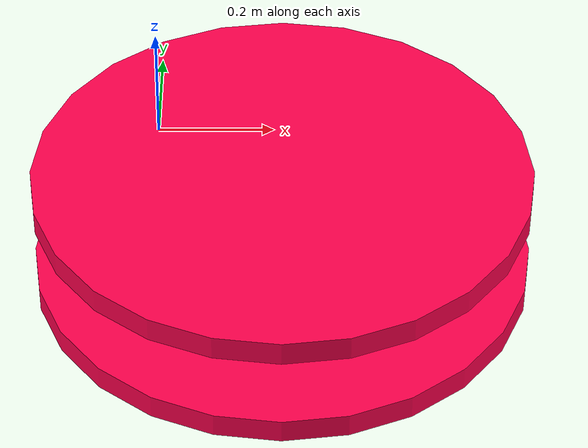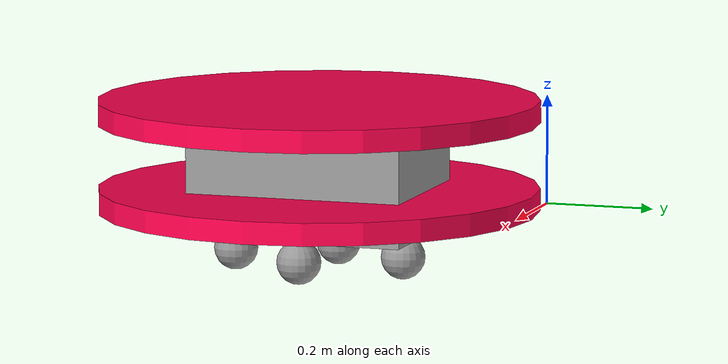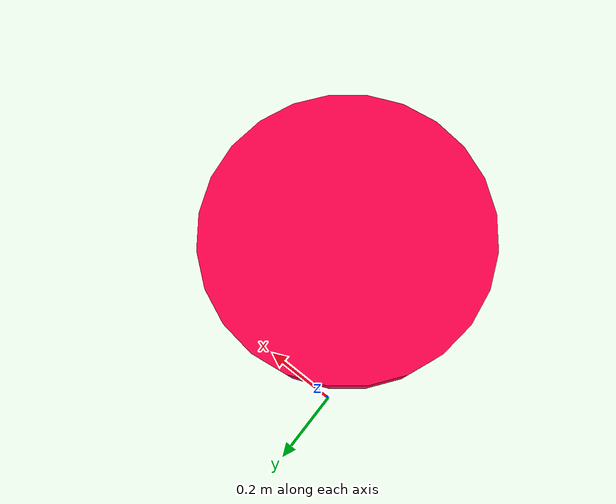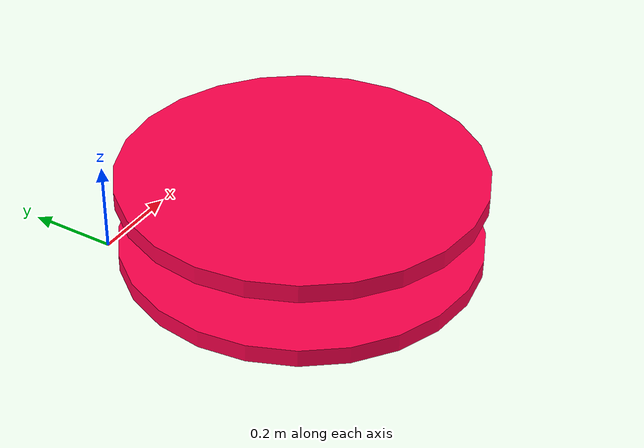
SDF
<?xml version='1.0'?>
<sdf version='1.6'>
  <model name='modelSrobot2'>
    <link name='link_2'>
      <pose frame=''>0.215375 -0.366265 0.065237 0 -0 0</pose>
      <inertial>
        <mass>1</mass>
        <inertia>
          <ixx>0.166667</ixx>
          <ixy>0</ixy>
          <ixz>0</ixz>
          <iyy>0.166667</iyy>
          <iyz>0</iyz>
          <izz>0.166667</izz>
        </inertia>
        <pose frame=''>0 0 0 0 -0 0</pose>
      </inertial>
      <self_collide>0</self_collide>
      <kinematic>0</kinematic>
      <visual name='visual'>
        <pose frame=''>0 0 0 0 -0 0</pose>
        <geometry>
          <box>
            <size>0.3 0.4 0.2</size>
          </box>
        </geometry>
        <material>
          <lighting>1</lighting>
          <script>
            <uri>file://media/materials/scripts/gazebo.material</uri>
            <name>Gazebo/Grey</name>
          </script>
          <shader type='pixel'>
            <normal_map>__default__</normal_map>
          </shader>
          <ambient>0.4 0.4 0.4 0.5</ambient>
          <diffuse>0.4 0.4 0.4 1</diffuse>
          <specular>0.41 0.41 0.41 1</specular>
          <emissive>0 0 0 1</emissive>
        </material>
        <transparency>0</transparency>
        <cast_shadows>1</cast_shadows>
      </visual>
      <collision name='collision'>
        <laser_retro>0</laser_retro>
        <max_contacts>10</max_contacts>
        <pose frame=''>0 0 0 0 -0 0</pose>
        <geometry>
          <box>
            <size>0.3 0.4 0.2</size>
          </box>
        </geometry>
        <surface>
          <friction>
            <ode>
              <mu>1</mu>
              <mu2>1</mu2>
              <fdir1>0 0 0</fdir1>
              <slip1>0</slip1>
              <slip2>0</slip2>
            </ode>
            <torsional>
              <coefficient>1</coefficient>
              <patch_radius>0</patch_radius>
              <surface_radius>0</surface_radius>
              <use_patch_radius>1</use_patch_radius>
              <ode>
                <slip>0</slip>
              </ode>
            </torsional>
          </friction>
          <bounce>
            <restitution_coefficient>0</restitution_coefficient>
            <threshold>1e+06</threshold>
          </bounce>
          <contact>
            <collide_without_contact>0</collide_without_contact>
            <collide_without_contact_bitmask>1</collide_without_contact_bitmask>
            <collide_bitmask>1</collide_bitmask>
            <ode>
              <soft_cfm>0</soft_cfm>
              <soft_erp>0.2</soft_erp>
              <kp>1e+13</kp>
              <kd>1</kd>
              <max_vel>0.01</max_vel>
              <min_depth>0</min_depth>
            </ode>
            <bullet>
              <split_impulse>1</split_impulse>
              <split_impulse_penetration_threshold>-0.01</split_impulse_penetration_threshold>
              <soft_cfm>0</soft_cfm>
              <soft_erp>0.2</soft_erp>
              <kp>1e+13</kp>
              <kd>1</kd>
            </bullet>
          </contact>
        </surface>
      </collision>
    </link>
    <link name='link_4_clone'>
      <pose frame=''>0.215375 -0.526264 -0.074763 0 -0 0</pose>
      <inertial>
        <mass>1</mass>
        <inertia>
          <ixx>0.1</ixx>
          <ixy>0</ixy>
          <ixz>0</ixz>
          <iyy>0.1</iyy>
          <iyz>0</iyz>
          <izz>0.1</izz>
        </inertia>
        <pose frame=''>0 0 0 0 -0 0</pose>
      </inertial>
      <self_collide>0</self_collide>
      <kinematic>0</kinematic>
      <visual name='visual'>
        <pose frame=''>0 0 0 0 -0 0</pose>
        <geometry>
          <sphere>
            <radius>0.04</radius>
          </sphere>
        </geometry>
        <material>
          <lighting>1</lighting>
          <script>
            <uri>file://media/materials/scripts/gazebo.material</uri>
            <name>Gazebo/Grey</name>
          </script>
          <shader type='pixel'>
            <normal_map>__default__</normal_map>
          </shader>
          <ambient>0.3 0.3 0.3 1</ambient>
          <diffuse>0.7 0.7 0.7 1</diffuse>
          <specular>0.01 0.01 0.01 1</specular>
          <emissive>0 0 0 1</emissive>
        </material>
        <transparency>0</transparency>
        <cast_shadows>1</cast_shadows>
      </visual>
      <collision name='collision'>
        <laser_retro>0</laser_retro>
        <max_contacts>10</max_contacts>
        <pose frame=''>0 0 0 0 -0 0</pose>
        <geometry>
          <sphere>
            <radius>0.04</radius>
          </sphere>
        </geometry>
        <surface>
          <friction>
            <ode>
              <mu>1</mu>
              <mu2>1</mu2>
              <fdir1>0 0 0</fdir1>
              <slip1>0</slip1>
              <slip2>0</slip2>
            </ode>
            <torsional>
              <coefficient>1</coefficient>
              <patch_radius>0</patch_radius>
              <surface_radius>0</surface_radius>
              <use_patch_radius>1</use_patch_radius>
              <ode>
                <slip>0</slip>
              </ode>
            </torsional>
          </friction>
          <bounce>
            <restitution_coefficient>0</restitution_coefficient>
            <threshold>1e+06</threshold>
          </bounce>
          <contact>
            <collide_without_contact>0</collide_without_contact>
            <collide_without_contact_bitmask>1</collide_without_contact_bitmask>
            <collide_bitmask>1</collide_bitmask>
            <ode>
              <soft_cfm>0</soft_cfm>
              <soft_erp>0.2</soft_erp>
              <kp>1e+13</kp>
              <kd>1</kd>
              <max_vel>0.01</max_vel>
              <min_depth>0</min_depth>
            </ode>
            <bullet>
              <split_impulse>1</split_impulse>
              <split_impulse_penetration_threshold>-0.01</split_impulse_penetration_threshold>
              <soft_cfm>0</soft_cfm>
              <soft_erp>0.2</soft_erp>
              <kp>1e+13</kp>
              <kd>1</kd>
            </bullet>
          </contact>
        </surface>
      </collision>
    </link>
    <link name='link_4_clone_clone'>
      <pose frame=''>0.215375 -0.206265 -0.074763 0 -0 0</pose>
      <inertial>
        <mass>1</mass>
        <inertia>
          <ixx>0.1</ixx>
          <ixy>0</ixy>
          <ixz>0</ixz>
          <iyy>0.1</iyy>
          <iyz>0</iyz>
          <izz>0.1</izz>
        </inertia>
        <pose frame=''>0 0 0 0 -0 0</pose>
      </inertial>
      <self_collide>0</self_collide>
      <kinematic>0</kinematic>
      <visual name='visual'>
        <pose frame=''>0 0 0 0 -0 0</pose>
        <geometry>
          <sphere>
            <radius>0.04</radius>
          </sphere>
        </geometry>
        <material>
          <lighting>1</lighting>
          <script>
            <uri>file://media/materials/scripts/gazebo.material</uri>
            <name>Gazebo/Grey</name>
          </script>
          <shader type='pixel'>
            <normal_map>__default__</normal_map>
          </shader>
          <ambient>0.3 0.3 0.3 1</ambient>
          <diffuse>0.7 0.7 0.7 1</diffuse>
          <specular>0.01 0.01 0.01 1</specular>
          <emissive>0 0 0 1</emissive>
        </material>
        <transparency>0</transparency>
        <cast_shadows>1</cast_shadows>
      </visual>
      <collision name='collision'>
        <laser_retro>0</laser_retro>
        <max_contacts>10</max_contacts>
        <pose frame=''>0 0 0 0 -0 0</pose>
        <geometry>
          <sphere>
            <radius>0.04</radius>
          </sphere>
        </geometry>
        <surface>
          <friction>
            <ode>
              <mu>1</mu>
              <mu2>1</mu2>
              <fdir1>0 0 0</fdir1>
              <slip1>0</slip1>
              <slip2>0</slip2>
            </ode>
            <torsional>
              <coefficient>1</coefficient>
              <patch_radius>0</patch_radius>
              <surface_radius>0</surface_radius>
              <use_patch_radius>1</use_patch_radius>
              <ode>
                <slip>0</slip>
              </ode>
            </torsional>
          </friction>
          <bounce>
            <restitution_coefficient>0</restitution_coefficient>
            <threshold>1e+06</threshold>
          </bounce>
          <contact>
            <collide_without_contact>0</collide_without_contact>
            <collide_without_contact_bitmask>1</collide_without_contact_bitmask>
            <collide_bitmask>1</collide_bitmask>
            <ode>
              <soft_cfm>0</soft_cfm>
              <soft_erp>0.2</soft_erp>
              <kp>1e+13</kp>
              <kd>1</kd>
              <max_vel>0.01</max_vel>
              <min_depth>0</min_depth>
            </ode>
            <bullet>
              <split_impulse>1</split_impulse>
              <split_impulse_penetration_threshold>-0.01</split_impulse_penetration_threshold>
              <soft_cfm>0</soft_cfm>
              <soft_erp>0.2</soft_erp>
              <kp>1e+13</kp>
              <kd>1</kd>
            </bullet>
          </contact>
        </surface>
      </collision>
    </link>
    <link name='link_4_clone_clone_0'>
      <pose frame=''>0.105375 -0.366265 -0.074763 0 -0 0</pose>
      <inertial>
        <mass>1</mass>
        <inertia>
          <ixx>0.1</ixx>
          <ixy>0</ixy>
          <ixz>0</ixz>
          <iyy>0.1</iyy>
          <iyz>0</iyz>
          <izz>0.1</izz>
        </inertia>
        <pose frame=''>0 0 0 0 -0 0</pose>
      </inertial>
      <self_collide>0</self_collide>
      <kinematic>0</kinematic>
      <visual name='visual'>
        <pose frame=''>0 0 0 0 -0 0</pose>
        <geometry>
          <sphere>
            <radius>0.04</radius>
          </sphere>
        </geometry>
        <material>
          <lighting>1</lighting>
          <script>
            <uri>file://media/materials/scripts/gazebo.material</uri>
            <name>Gazebo/Grey</name>
          </script>
          <shader type='pixel'>
            <normal_map>__default__</normal_map>
          </shader>
          <ambient>0.3 0.3 0.3 1</ambient>
          <diffuse>0.7 0.7 0.7 1</diffuse>
          <specular>0.01 0.01 0.01 1</specular>
          <emissive>0 0 0 1</emissive>
        </material>
        <transparency>0</transparency>
        <cast_shadows>1</cast_shadows>
      </visual>
      <collision name='collision'>
        <laser_retro>0</laser_retro>
        <max_contacts>10</max_contacts>
        <pose frame=''>0 0 0 0 -0 0</pose>
        <geometry>
          <sphere>
            <radius>0.04</radius>
          </sphere>
        </geometry>
        <surface>
          <friction>
            <ode>
              <mu>1</mu>
              <mu2>1</mu2>
              <fdir1>0 0 0</fdir1>
              <slip1>0</slip1>
              <slip2>0</slip2>
            </ode>
            <torsional>
              <coefficient>1</coefficient>
              <patch_radius>0</patch_radius>
              <surface_radius>0</surface_radius>
              <use_patch_radius>1</use_patch_radius>
              <ode>
                <slip>0</slip>
              </ode>
            </torsional>
          </friction>
          <bounce>
            <restitution_coefficient>0</restitution_coefficient>
            <threshold>1e+06</threshold>
          </bounce>
          <contact>
            <collide_without_contact>0</collide_without_contact>
            <collide_without_contact_bitmask>1</collide_without_contact_bitmask>
            <collide_bitmask>1</collide_bitmask>
            <ode>
              <soft_cfm>0</soft_cfm>
              <soft_erp>0.2</soft_erp>
              <kp>1e+13</kp>
              <kd>1</kd>
              <max_vel>0.01</max_vel>
              <min_depth>0</min_depth>
            </ode>
            <bullet>
              <split_impulse>1</split_impulse>
              <split_impulse_penetration_threshold>-0.01</split_impulse_penetration_threshold>
              <soft_cfm>0</soft_cfm>
              <soft_erp>0.2</soft_erp>
              <kp>1e+13</kp>
              <kd>1</kd>
            </bullet>
          </contact>
        </surface>
      </collision>
    </link>
    <link name='link_4_clone_clone_0_clone'>
      <pose frame=''>0.325375 -0.366265 -0.074763 0 -0 0</pose>
      <inertial>
        <mass>1</mass>
        <inertia>
          <ixx>0.1</ixx>
          <ixy>0</ixy>
          <ixz>0</ixz>
          <iyy>0.1</iyy>
          <iyz>0</iyz>
          <izz>0.1</izz>
        </inertia>
        <pose frame=''>0 0 0 0 -0 0</pose>
      </inertial>
      <self_collide>0</self_collide>
      <kinematic>0</kinematic>
      <visual name='visual'>
        <pose frame=''>0 0 0 0 -0 0</pose>
        <geometry>
          <sphere>
            <radius>0.04</radius>
          </sphere>
        </geometry>
        <material>
          <lighting>1</lighting>
          <script>
            <uri>file://media/materials/scripts/gazebo.material</uri>
            <name>Gazebo/Grey</name>
          </script>
          <shader type='pixel'>
            <normal_map>__default__</normal_map>
          </shader>
          <ambient>0.3 0.3 0.3 1</ambient>
          <diffuse>0.7 0.7 0.7 1</diffuse>
          <specular>0.01 0.01 0.01 1</specular>
          <emissive>0 0 0 1</emissive>
        </material>
        <transparency>0</transparency>
        <cast_shadows>1</cast_shadows>
      </visual>
      <collision name='collision'>
        <laser_retro>0</laser_retro>
        <max_contacts>10</max_contacts>
        <pose frame=''>0 0 0 0 -0 0</pose>
        <geometry>
          <sphere>
            <radius>0.04</radius>
          </sphere>
        </geometry>
        <surface>
          <friction>
            <ode>
              <mu>1</mu>
              <mu2>1</mu2>
              <fdir1>0 0 0</fdir1>
              <slip1>0</slip1>
              <slip2>0</slip2>
            </ode>
            <torsional>
              <coefficient>1</coefficient>
              <patch_radius>0</patch_radius>
              <surface_radius>0</surface_radius>
              <use_patch_radius>1</use_patch_radius>
              <ode>
                <slip>0</slip>
              </ode>
            </torsional>
          </friction>
          <bounce>
            <restitution_coefficient>0</restitution_coefficient>
            <threshold>1e+06</threshold>
          </bounce>
          <contact>
            <collide_without_contact>0</collide_without_contact>
            <collide_without_contact_bitmask>1</collide_without_contact_bitmask>
            <collide_bitmask>1</collide_bitmask>
            <ode>
              <soft_cfm>0</soft_cfm>
              <soft_erp>0.2</soft_erp>
              <kp>1e+13</kp>
              <kd>1</kd>
              <max_vel>0.01</max_vel>
              <min_depth>0</min_depth>
            </ode>
            <bullet>
              <split_impulse>1</split_impulse>
              <split_impulse_penetration_threshold>-0.01</split_impulse_penetration_threshold>
              <soft_cfm>0</soft_cfm>
              <soft_erp>0.2</soft_erp>
              <kp>1e+13</kp>
              <kd>1</kd>
            </bullet>
          </contact>
        </surface>
      </collision>
    </link>
    <link name='link_7'>
      <pose frame=''>0.215375 -0.366265 0.025237 0 -0 0</pose>
      <inertial>
        <mass>1</mass>
        <inertia>
          <ixx>0.145833</ixx>
          <ixy>0</ixy>
          <ixz>0</ixz>
          <iyy>0.145833</iyy>
          <iyz>0</iyz>
          <izz>0.125</izz>
        </inertia>
        <pose frame=''>0 0 0 0 -0 0</pose>
      </inertial>
      <self_collide>0</self_collide>
      <kinematic>0</kinematic>
      <gravity>1</gravity>
      <visual name='visual'>
        <pose frame=''>0 0 0 0 -0 0</pose>
        <geometry>
          <cylinder>
            <radius>0.4</radius>
            <length>0.04</length>
          </cylinder>
        </geometry>
        <material>
          <lighting>1</lighting>
          <script>
            <uri>file://media/materials/scripts/gazebo.material</uri>
            <name>Gazebo/Grey</name>
          </script>
          <shader type='pixel'>
            <normal_map>__default__</normal_map>
          </shader>
          <ambient>1 0 0.3 1</ambient>
          <diffuse>1 0 0.3 1</diffuse>
          <specular>1 0 0.3 1</specular>
          <emissive>1 0 0.3 1</emissive>
        </material>
        <transparency>0</transparency>
        <cast_shadows>1</cast_shadows>
      </visual>
      <collision name='collision'>
        <laser_retro>0</laser_retro>
        <max_contacts>10</max_contacts>
        <pose frame=''>0 0 0 0 -0 0</pose>
        <geometry>
          <cylinder>
            <radius>0.4</radius>
            <length>0.04</length>
          </cylinder>
        </geometry>
        <surface>
          <friction>
            <ode>
              <mu>1</mu>
              <mu2>1</mu2>
              <fdir1>0 0 0</fdir1>
              <slip1>0</slip1>
              <slip2>0</slip2>
            </ode>
            <torsional>
              <coefficient>1</coefficient>
              <patch_radius>0</patch_radius>
              <surface_radius>0</surface_radius>
              <use_patch_radius>1</use_patch_radius>
              <ode>
                <slip>0</slip>
              </ode>
            </torsional>
          </friction>
          <bounce>
            <restitution_coefficient>0</restitution_coefficient>
            <threshold>1e+06</threshold>
          </bounce>
          <contact>
            <collide_without_contact>0</collide_without_contact>
            <collide_without_contact_bitmask>1</collide_without_contact_bitmask>
            <collide_bitmask>1</collide_bitmask>
            <ode>
              <soft_cfm>0</soft_cfm>
              <soft_erp>0.2</soft_erp>
              <kp>1e+13</kp>
              <kd>1</kd>
              <max_vel>0.01</max_vel>
              <min_depth>0</min_depth>
            </ode>
            <bullet>
              <split_impulse>1</split_impulse>
              <split_impulse_penetration_threshold>-0.01</split_impulse_penetration_threshold>
              <soft_cfm>0</soft_cfm>
              <soft_erp>0.2</soft_erp>
              <kp>1e+13</kp>
              <kd>1</kd>
            </bullet>
          </contact>
        </surface>
      </collision>
    </link>
    <link name='link_7_clone'>
      <pose frame=''>0.215375 -0.366265 0.185237 0 -0 0</pose>
      <inertial>
        <mass>1</mass>
        <inertia>
          <ixx>0.145833</ixx>
          <ixy>0</ixy>
          <ixz>0</ixz>
          <iyy>0.145833</iyy>
          <iyz>0</iyz>
          <izz>0.125</izz>
        </inertia>
        <pose frame=''>0 0 0 0 -0 0</pose>
      </inertial>
      <self_collide>0</self_collide>
      <kinematic>0</kinematic>
      <gravity>1</gravity>
      <visual name='visual'>
        <pose frame=''>0 0 0 0 -0 0</pose>
        <geometry>
          <cylinder>
            <radius>0.4</radius>
            <length>0.04</length>
          </cylinder>
        </geometry>
        <material>
          <lighting>1</lighting>
          <script>
            <uri>file://media/materials/scripts/gazebo.material</uri>
            <name>Gazebo/Grey</name>
          </script>
          <shader type='pixel'>
            <normal_map>__default__</normal_map>
          </shader>
          <ambient>1 0 0.3 1</ambient>
          <diffuse>1 0 0.3 1</diffuse>
          <specular>1 0 0.3 1</specular>
          <emissive>1 0 0 1</emissive>
        </material>
        <transparency>0</transparency>
        <cast_shadows>1</cast_shadows>
      </visual>
      <collision name='collision'>
        <laser_retro>0</laser_retro>
        <max_contacts>10</max_contacts>
        <pose frame=''>0 0 0 0 -0 0</pose>
        <geometry>
          <cylinder>
            <radius>0.4</radius>
            <length>0.04</length>
          </cylinder>
        </geometry>
        <surface>
          <friction>
            <ode>
              <mu>1</mu>
              <mu2>1</mu2>
              <fdir1>0 0 0</fdir1>
              <slip1>0</slip1>
              <slip2>0</slip2>
            </ode>
            <torsional>
              <coefficient>1</coefficient>
              <patch_radius>0</patch_radius>
              <surface_radius>0</surface_radius>
              <use_patch_radius>1</use_patch_radius>
              <ode>
                <slip>0</slip>
              </ode>
            </torsional>
          </friction>
          <bounce>
            <restitution_coefficient>0</restitution_coefficient>
            <threshold>1e+06</threshold>
          </bounce>
          <contact>
            <collide_without_contact>0</collide_without_contact>
            <collide_without_contact_bitmask>1</collide_without_contact_bitmask>
            <collide_bitmask>1</collide_bitmask>
            <ode>
              <soft_cfm>0</soft_cfm>
              <soft_erp>0.2</soft_erp>
              <kp>1e+13</kp>
              <kd>1</kd>
              <max_vel>0.01</max_vel>
              <min_depth>0</min_depth>
            </ode>
            <bullet>
              <split_impulse>1</split_impulse>
              <split_impulse_penetration_threshold>-0.01</split_impulse_penetration_threshold>
              <soft_cfm>0</soft_cfm>
              <soft_erp>0.2</soft_erp>
              <kp>1e+13</kp>
              <kd>1</kd>
            </bullet>
          </contact>
        </surface>
      </collision>
    </link>
    <joint name='link_2_JOINT_10' type='revolute'>
      <parent>link_2</parent>
      <child>link_7_clone</child>
      <pose frame=''>0 0 0 0 -0 0</pose>
      <axis>
        <xyz>1 0 0</xyz>
        <use_parent_model_frame>0</use_parent_model_frame>
        <limit>
          <lower>-1.79769e+308</lower>
          <upper>1.79769e+308</upper>
          <effort>-1</effort>
          <velocity>-1</velocity>
        </limit>
        <dynamics>
          <spring_reference>0</spring_reference>
          <spring_stiffness>0</spring_stiffness>
          <damping>0</damping>
          <friction>0</friction>
        </dynamics>
      </axis>
      <physics>
        <ode>
          <limit>
            <cfm>0</cfm>
            <erp>0.2</erp>
          </limit>
          <suspension>
            <cfm>0</cfm>
            <erp>0.2</erp>
          </suspension>
        </ode>
      </physics>
    </joint>
    <joint name='link_2_JOINT_13' type='revolute'>
      <parent>link_2</parent>
      <child>link_4_clone_clone_0</child>
      <pose frame=''>0 0 0 0 -0 0</pose>
      <axis>
        <xyz>1 0 0</xyz>
        <use_parent_model_frame>0</use_parent_model_frame>
        <limit>
          <lower>-1.79769e+308</lower>
          <upper>1.79769e+308</upper>
          <effort>-1</effort>
          <velocity>-1</velocity>
        </limit>
        <dynamics>
          <spring_reference>0</spring_reference>
          <spring_stiffness>0</spring_stiffness>
          <damping>0</damping>
          <friction>0</friction>
        </dynamics>
      </axis>
      <physics>
        <ode>
          <limit>
            <cfm>0</cfm>
            <erp>0.2</erp>
          </limit>
          <suspension>
            <cfm>0</cfm>
            <erp>0.2</erp>
          </suspension>
        </ode>
      </physics>
    </joint>
    <joint name='link_2_JOINT_14' type='revolute'>
      <parent>link_2</parent>
      <child>link_4_clone_clone_0_clone</child>
      <pose frame=''>0 0 0 0 -0 0</pose>
      <axis>
        <xyz>1 0 0</xyz>
        <use_parent_model_frame>0</use_parent_model_frame>
        <limit>
          <lower>-1.79769e+308</lower>
          <upper>1.79769e+308</upper>
          <effort>-1</effort>
          <velocity>-1</velocity>
        </limit>
        <dynamics>
          <spring_reference>0</spring_reference>
          <spring_stiffness>0</spring_stiffness>
          <damping>0</damping>
          <friction>0</friction>
        </dynamics>
      </axis>
      <physics>
        <ode>
          <limit>
            <cfm>0</cfm>
            <erp>0.2</erp>
          </limit>
          <suspension>
            <cfm>0</cfm>
            <erp>0.2</erp>
          </suspension>
        </ode>
      </physics>
    </joint>
    <joint name='link_2_JOINT_1' type='revolute'>
      <parent>link_2</parent>
      <child>link_4_clone</child>
      <pose frame=''>0 0 0 0 -0 0</pose>
      <axis>
        <xyz>1 0 0</xyz>
        <use_parent_model_frame>0</use_parent_model_frame>
        <limit>
          <lower>-1.79769e+308</lower>
          <upper>1.79769e+308</upper>
          <effort>-1</effort>
          <velocity>-1</velocity>
        </limit>
        <dynamics>
          <spring_reference>0</spring_reference>
          <spring_stiffness>0</spring_stiffness>
          <damping>0</damping>
          <friction>0</friction>
        </dynamics>
      </axis>
      <physics>
        <ode>
          <limit>
            <cfm>0</cfm>
            <erp>0.2</erp>
          </limit>
          <suspension>
            <cfm>0</cfm>
            <erp>0.2</erp>
          </suspension>
        </ode>
      </physics>
    </joint>
    <joint name='link_2_JOINT_3' type='revolute'>
      <parent>link_2</parent>
      <child>link_4_clone_clone</child>
      <pose frame=''>0 0 0 0 -0 0</pose>
      <axis>
        <xyz>1 0 0</xyz>
        <use_parent_model_frame>0</use_parent_model_frame>
        <limit>
          <lower>-1.79769e+308</lower>
          <upper>1.79769e+308</upper>
          <effort>-1</effort>
          <velocity>-1</velocity>
        </limit>
        <dynamics>
          <spring_reference>0</spring_reference>
          <spring_stiffness>0</spring_stiffness>
          <damping>0</damping>
          <friction>0</friction>
        </dynamics>
      </axis>
      <physics>
        <ode>
          <limit>
            <cfm>0</cfm>
            <erp>0.2</erp>
          </limit>
          <suspension>
            <cfm>0</cfm>
            <erp>0.2</erp>
          </suspension>
        </ode>
      </physics>
    </joint>
    <joint name='link_2_JOINT_5' type='revolute'>
      <parent>link_2</parent>
      <child>link_4_clone_clone</child>
      <pose frame=''>0 0 0 0 -0 0</pose>
      <axis>
        <xyz>1 0 0</xyz>
        <use_parent_model_frame>0</use_parent_model_frame>
        <limit>
          <lower>-1.79769e+308</lower>
          <upper>1.79769e+308</upper>
          <effort>-1</effort>
          <velocity>-1</velocity>
        </limit>
        <dynamics>
          <spring_reference>0</spring_reference>
          <spring_stiffness>0</spring_stiffness>
          <damping>0</damping>
          <friction>0</friction>
        </dynamics>
      </axis>
      <physics>
        <ode>
          <limit>
            <cfm>0</cfm>
            <erp>0.2</erp>
          </limit>
          <suspension>
            <cfm>0</cfm>
            <erp>0.2</erp>
          </suspension>
        </ode>
      </physics>
    </joint>
    <joint name='link_2_JOINT_7' type='revolute'>
      <parent>link_2</parent>
      <child>link_4_clone</child>
      <pose frame=''>0 0 0 0 -0 0</pose>
      <axis>
        <xyz>1 0 0</xyz>
        <use_parent_model_frame>0</use_parent_model_frame>
        <limit>
          <lower>-1.79769e+308</lower>
          <upper>1.79769e+308</upper>
          <effort>-1</effort>
          <velocity>-1</velocity>
        </limit>
        <dynamics>
          <spring_reference>0</spring_reference>
          <spring_stiffness>0</spring_stiffness>
          <damping>0</damping>
          <friction>0</friction>
        </dynamics>
      </axis>
      <physics>
        <ode>
          <limit>
            <cfm>0</cfm>
            <erp>0.2</erp>
          </limit>
          <suspension>
            <cfm>0</cfm>
            <erp>0.2</erp>
          </suspension>
        </ode>
      </physics>
    </joint>
    <joint name='link_2_JOINT_9' type='revolute'>
      <parent>link_2</parent>
      <child>link_7</child>
      <pose frame=''>0 0 0 0 -0 0</pose>
      <axis>
        <xyz>1 0 0</xyz>
        <use_parent_model_frame>0</use_parent_model_frame>
        <limit>
          <lower>-1.79769e+308</lower>
          <upper>1.79769e+308</upper>
          <effort>-1</effort>
          <velocity>-1</velocity>
        </limit>
        <dynamics>
          <spring_reference>0</spring_reference>
          <spring_stiffness>0</spring_stiffness>
          <damping>0</damping>
          <friction>0</friction>
        </dynamics>
      </axis>
      <physics>
        <ode>
          <limit>
            <cfm>0</cfm>
            <erp>0.2</erp>
          </limit>
          <suspension>
            <cfm>0</cfm>
            <erp>0.2</erp>
          </suspension>
        </ode>
      </physics>
    </joint>
    <joint name='link_7_JOINT_11' type='revolute'>
      <parent>link_7</parent>
      <child>link_4_clone_clone_0</child>
      <pose frame=''>0 0 0 0 -0 0</pose>
      <axis>
        <xyz>1 0 0</xyz>
        <use_parent_model_frame>0</use_parent_model_frame>
        <limit>
          <lower>-1.79769e+308</lower>
          <upper>1.79769e+308</upper>
          <effort>-1</effort>
          <velocity>-1</velocity>
        </limit>
        <dynamics>
          <spring_reference>0</spring_reference>
          <spring_stiffness>0</spring_stiffness>
          <damping>0</damping>
          <friction>0</friction>
        </dynamics>
      </axis>
      <physics>
        <ode>
          <limit>
            <cfm>0</cfm>
            <erp>0.2</erp>
          </limit>
          <suspension>
            <cfm>0</cfm>
            <erp>0.2</erp>
          </suspension>
        </ode>
      </physics>
    </joint>
    <static>0</static>
    <allow_auto_disable>1</allow_auto_disable>
  </model>
</sdf>
